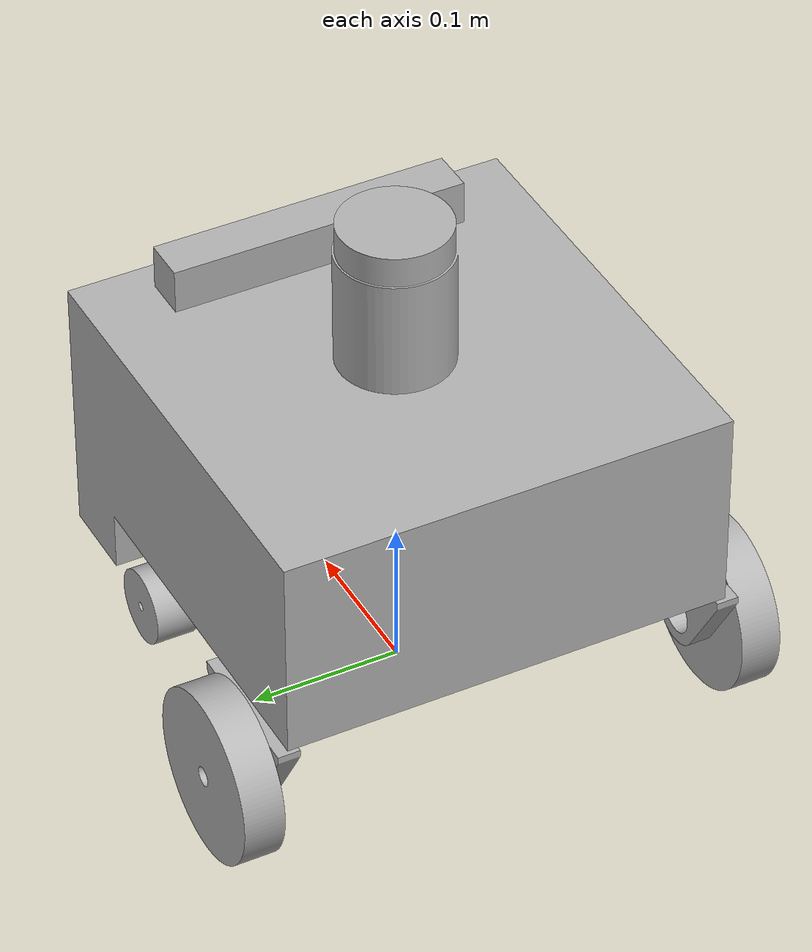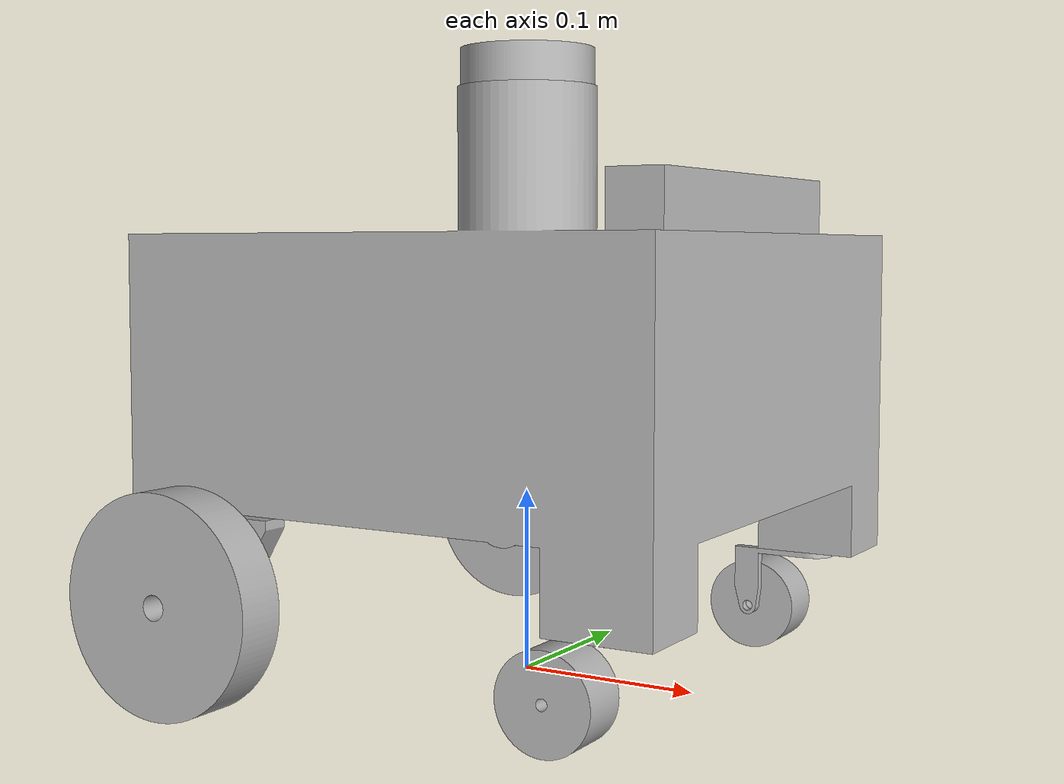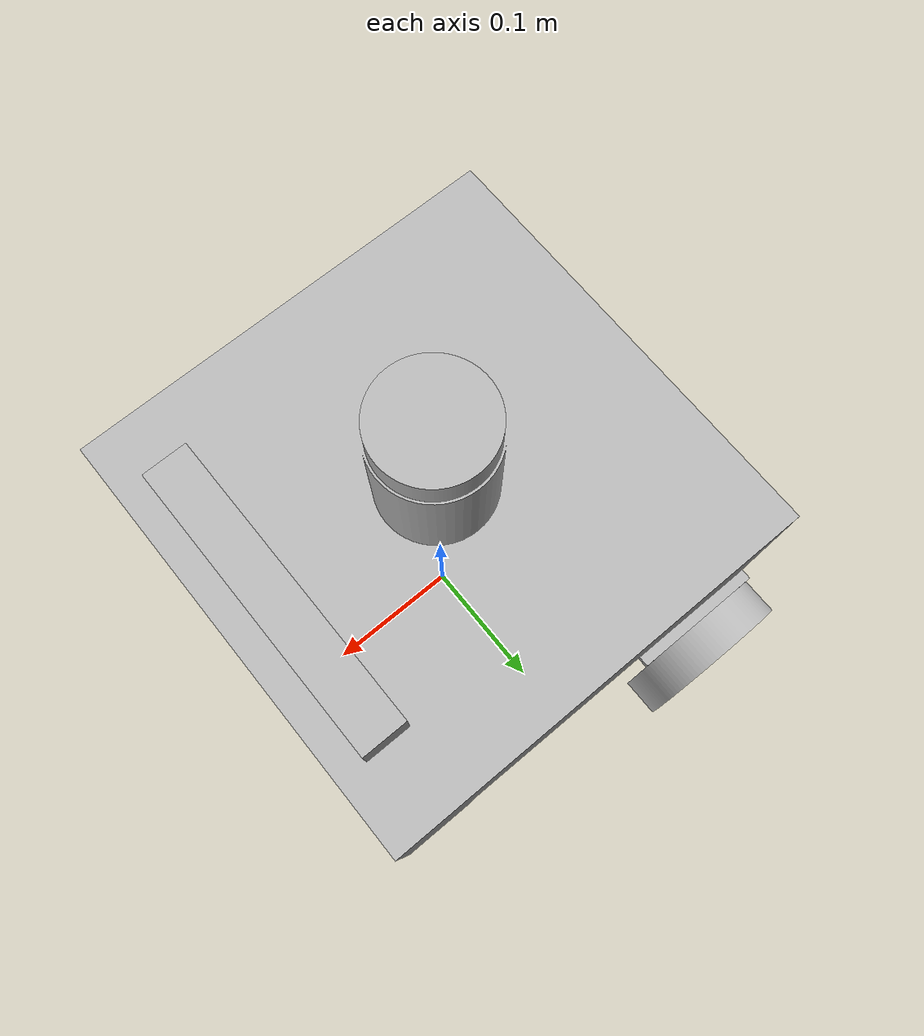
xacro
<?xml version="1.0" ?>
<robot name="agv_origin" xmlns:xacro="http://www.ros.org/wiki/xacro">

<xacro:include filename="$(find agv_origin_description)/urdf/materials.xacro" />
<xacro:include filename="$(find agv_origin_description)/urdf/agv_origin.trans" />
<xacro:include filename="$(find agv_origin_description)/urdf/agv_origin.gazebo" />
<link name="base_footprint"/>

<joint name="base_footprint_joint" type="fixed">
  <parent link="base_footprint"/>
  <child link="base_link"/>
  <origin xyz="0 0 0.1005" rpy="0 0 3.14159"/>
</joint>
<link name="base_link">
  <inertial>
    <origin xyz="-3.244789018330238e-07 -0.0010765720842164906 0.07086414896629663" rpy="0 0 0"/>
    <mass value="104.19831248399346"/>
    <inertia ixx="0.994899" iyy="1.00618" izz="1.564619" ixy="-4e-06" iyz="-0.010142" ixz="-3e-06"/>
  </inertial>
  <visual>
    <origin xyz="0 0 0" rpy="0 0 -1.5708"/>
    <geometry>
      <mesh filename="file://$(find agv_origin_description)/meshes/base_link.stl" scale="0.001 0.001 0.001"/>
    </geometry>
    <material name="silver"/>
  </visual>
  <collision>
    <origin xyz="0 0 0" rpy="0 0 0"/>
    <geometry>
      <mesh filename="file://$(find agv_origin_description)/meshes/base_link.stl" scale="0.001 0.001 0.001"/>
    </geometry>
  </collision>
</link>

<link name="lidar_1">
  <inertial>
    <origin xyz="6.625073916904315e-18 6.625073916904315e-18 0.010250000000000009" rpy="0 0 0"/>
    <mass value="0.6735333728409896"/>
    <inertia ixx="0.000248" iyy="0.000248" izz="0.000449" ixy="0.0" iyz="0.0" ixz="0.0"/>
  </inertial>
  <visual>
    <origin xyz="-0.0 -0.0 -0.22" rpy="0 0 -1.5708"/>
    <geometry>
      <mesh filename="file://$(find agv_origin_description)/meshes/lidar_1.stl" scale="0.001 0.001 0.001"/>
    </geometry>
    <material name="silver"/>
  </visual>
  <collision>
    <origin xyz="-0.0 -0.0 -0.22" rpy="0 0 0"/>
    <geometry>
      <mesh filename="file://$(find agv_origin_description)/meshes/lidar_1.stl" scale="0.001 0.001 0.001"/>
    </geometry>
  </collision>
</link>

<link name="imu_link">
  <visual>
    <geometry>
      <box size="0.04 0.04 0.01"/>
    </geometry>
    <material name="silver"/>
  </visual>
</link>

<link name="depth_cam_1">
  <inertial>
    <origin xyz="0.0 0.0 0.014999999999999986" rpy="0 0 0"/>
    <mass value="1.412999999999999"/>
    <inertia ixx="0.000212" iyy="0.004816" izz="0.004816" ixy="0.0" iyz="0.0" ixz="-0.0"/>
  </inertial>
  <visual>
    <origin xyz="-0.0 0.115 -0.14" rpy="0 0 -1.5708"/>
    <geometry>
      <mesh filename="file://$(find agv_origin_description)/meshes/depth_cam_1.stl" scale="0.001 0.001 0.001"/>
    </geometry>
    <material name="silver"/>
  </visual>
  <collision>
    <origin xyz="-0.0 0.115 -0.14" rpy="0 0 0"/>
    <geometry>
      <mesh filename="file://$(find agv_origin_description)/meshes/depth_cam_1.stl" scale="0.001 0.001 0.001"/>
    </geometry>
  </collision>
</link>

<link name="left_wheel_1">
  <inertial>
    <origin xyz="0.01350000000000004 1.5497114980167481e-09 -6.482005140973079e-10" rpy="0 0 0"/>
    <mass value="2.13458250728232"/>
    <inertia ixx="0.003514" iyy="0.001887" izz="0.001887" ixy="0.0" iyz="-0.0" ixz="-0.0"/>
  </inertial>
  <visual>
    <origin xyz="-0.1578 -0.104 0.0435" rpy="0 0 -1.5708"/>
    <geometry>
      <mesh filename="file://$(find agv_origin_description)/meshes/left_wheel_1.stl" scale="0.001 0.001 0.001"/>
    </geometry>
    <material name="silver"/>
  </visual>
  <collision>
    <origin xyz="-0.1578 -0.104 0.0435" rpy="0 0 0"/>
    <geometry>
      <mesh filename="file://$(find agv_origin_description)/meshes/left_wheel_1.stl" scale="0.001 0.001 0.001"/>
    </geometry>
  </collision>
</link>

<link name="right_wheel_1">
  <inertial>
    <origin xyz="-0.013499999999999984 1.5497114980167481e-09 -6.482005140973079e-10" rpy="0 0 0"/>
    <mass value="2.13458250728232"/>
    <inertia ixx="0.003514" iyy="0.001887" izz="0.001887" ixy="0.0" iyz="-0.0" ixz="0.0"/>
  </inertial>
  <visual>
    <origin xyz="0.1578 -0.104 0.0435" rpy="0 0 -1.5708"/>
    <geometry>
      <mesh filename="file://$(find agv_origin_description)/meshes/right_wheel_1.stl" scale="0.001 0.001 0.001"/>
    </geometry>
    <material name="silver"/>
  </visual>
  <collision>
    <origin xyz="0.1578 -0.104 0.0435" rpy="0 0 0"/>
    <geometry>
      <mesh filename="file://$(find agv_origin_description)/meshes/right_wheel_1.stl" scale="0.001 0.001 0.001"/>
    </geometry>
  </collision>
</link>

<link name="castrol_bracket_right_1">
  <inertial>
    <origin xyz="0.01608195515952232 0.022102290099966046 -0.011027594642399899" rpy="0 0 0"/>
    <mass value="0.03265959573384071"/>
    <inertia ixx="1.4e-05" iyy="6e-06" izz="1.2e-05" ixy="-3e-06" iyz="4e-06" ixz="1e-06"/>
  </inertial>
  <visual>
    <origin xyz="0.12695 0.1222 0.0406" rpy="0 0 -1.5708"/>
    <geometry>
      <mesh filename="file://$(find agv_origin_description)/meshes/castrol_bracket_right_1.stl" scale="0.001 0.001 0.001"/>
    </geometry>
    <material name="silver"/>
  </visual>
  <collision>
    <origin xyz="0.12695 0.1222 0.0406" rpy="0 0 0"/>
    <geometry>
      <mesh filename="file://$(find agv_origin_description)/meshes/castrol_bracket_right_1.stl" scale="0.001 0.001 0.001"/>
    </geometry>
  </collision>
</link>

<link name="castrol_wheel_right_1">
  <inertial>
    <origin xyz="-0.013999958585943356 -1.3113066604786283e-09 -1.1175870923141318e-09" rpy="0 0 0"/>
    <mass value="0.43733266648974745"/>
    <inertia ixx="0.000142" iyy="0.0001" izz="0.0001" ixy="0.0" iyz="0.0" ixz="-0.0"/>
  </inertial>
  <visual>
    <origin xyz="0.109238 0.088 0.075" rpy="0 0 -1.5708"/>
    <geometry>
      <mesh filename="file://$(find agv_origin_description)/meshes/castrol_wheel_right_1.stl" scale="0.001 0.001 0.001"/>
    </geometry>
    <material name="silver"/>
  </visual>
  <collision>
    <origin xyz="0.109238 0.088 0.075" rpy="0 0 0"/>
    <geometry>
      <mesh filename="file://$(find agv_origin_description)/meshes/castrol_wheel_right_1.stl" scale="0.001 0.001 0.001"/>
    </geometry>
  </collision>
</link>

<link name="castrol_bracket_left_1">
  <inertial>
    <origin xyz="-0.016081955159522376 0.022102290099966018 -0.011027594642399823" rpy="0 0 0"/>
    <mass value="0.032659595733840543"/>
    <inertia ixx="1.4e-05" iyy="6e-06" izz="1.2e-05" ixy="3e-06" iyz="4e-06" ixz="-1e-06"/>
  </inertial>
  <visual>
    <origin xyz="-0.12695 0.1222 0.0406" rpy="0 0 -1.5708"/>
    <geometry>
      <mesh filename="file://$(find agv_origin_description)/meshes/castrol_bracket_left_1.stl" scale="0.001 0.001 0.001"/>
    </geometry>
    <material name="silver"/>
  </visual>
  <collision>
    <origin xyz="-0.12695 0.1222 0.0406" rpy="0 0 0"/>
    <geometry>
      <mesh filename="file://$(find agv_origin_description)/meshes/castrol_bracket_left_1.stl" scale="0.001 0.001 0.001"/>
    </geometry>
  </collision>
</link>

<link name="castrol_wheel_left_1">
  <inertial>
    <origin xyz="0.013999958585943356 -1.3113066604786283e-09 -1.1175870923141318e-09" rpy="0 0 0"/>
    <mass value="0.43733266648974745"/>
    <inertia ixx="0.000142" iyy="0.0001" izz="0.0001" ixy="0.0" iyz="0.0" ixz="0.0"/>
  </inertial>
  <visual>
    <origin xyz="-0.109238 0.088 0.075" rpy="0 0 -1.5708"/>
    <geometry>
      <mesh filename="file://$(find agv_origin_description)/meshes/castrol_wheel_left_1.stl" scale="0.001 0.001 0.001"/>
    </geometry>
    <material name="silver"/>
  </visual>
  <collision>
    <origin xyz="-0.109238 0.088 0.075" rpy="0 0 0"/>
    <geometry>
      <mesh filename="file://$(find agv_origin_description)/meshes/castrol_wheel_left_1.stl" scale="0.001 0.001 0.001"/>
    </geometry>
  </collision>
</link>

<joint name="Rigid 1" type="fixed">
  <origin xyz="0.0 0.0 0.22" rpy="0 0 0"/>
  <parent link="base_link"/>
  <child link="lidar_1"/>
</joint>

<joint name="Rigid 2" type="fixed">
  <origin xyz="0.0 -0.115 0.14" rpy="0 0 0"/>
  <parent link="base_link"/>
  <child link="depth_cam_1"/>
</joint>

<joint name="Revolute 3" type="continuous">
  <origin xyz="0.1578 0.104 -0.0435" rpy="0 0 0"/>
  <parent link="base_link"/>
  <child link="left_wheel_1"/>
  <axis xyz="-1.0 0.0 0.0"/>
</joint>

<joint name="Revolute 4" type="continuous">
  <origin xyz="-0.1578 0.104 -0.0435" rpy="0 0 0"/>
  <parent link="base_link"/>
  <child link="right_wheel_1"/>
  <axis xyz="-1.0 0.0 0.0"/>
</joint>

<joint name="Revolute 5" type="continuous">
  <origin xyz="-0.12695 -0.1222 -0.0406" rpy="0 0 0"/>
  <parent link="base_link"/>
  <child link="castrol_bracket_right_1"/>
  <axis xyz="0.0 0.0 -1.0"/>
</joint>

<joint name="Revolute 6" type="continuous">
  <origin xyz="0.017712 0.0342 -0.0344" rpy="0 0 0"/>
  <parent link="castrol_bracket_right_1"/>
  <child link="castrol_wheel_right_1"/>
  <axis xyz="-1.0 0.0 0.0"/>
</joint>

<joint name="Revolute 7" type="continuous">
  <origin xyz="0.12695 -0.1222 -0.0406" rpy="0 0 0"/>
  <parent link="base_link"/>
  <child link="castrol_bracket_left_1"/>
  <axis xyz="0.0 0.0 -1.0"/>
</joint>

<joint name="Revolute 8" type="continuous">
  <origin xyz="-0.017712 0.0342 -0.0344" rpy="0 0 0"/>
  <parent link="castrol_bracket_left_1"/>
  <child link="castrol_wheel_left_1"/>
  <axis xyz="-1.0 0.0 0.0"/>
</joint>

<joint name="imu_joint" type="fixed">
  <origin xyz="0.0 0.0 0.1" rpy="0 0 0"/>
  <parent link="base_link"/>
  <child link="imu_link"/>
</joint>

</robot>

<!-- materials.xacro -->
<robot name="agv_origin" xmlns:xacro="http://www.ros.org/wiki/xacro" >

<material name="silver">
  <color rgba="0.700 0.700 0.700 1.000"/>
</material>

</robot>

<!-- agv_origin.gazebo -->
<robot name="agv_origin" xmlns:xacro="http://www.ros.org/wiki/xacro" >

<xacro:property name="body_color" value="Gazebo/Silver" />
<gazebo>
  <plugin name="control" filename="libgazebo_ros_control.so"/>
</gazebo>
<gazebo reference="base_link">
  <material>${body_color}</material>
  <mu1>0.2</mu1>
  <mu2>0.2</mu2>
  <self_collide>true</self_collide>
  <gravity>true</gravity>
</gazebo>

<gazebo reference="lidar_1">
  <material>${body_color}</material>
  <mu1>0.2</mu1>
  <mu2>0.2</mu2>
  <self_collide>true</self_collide>
</gazebo>

<gazebo reference="depth_cam_1">
  <material>${body_color}</material>
  <mu1>0.2</mu1>
  <mu2>0.2</mu2>
  <self_collide>true</self_collide>
</gazebo>

<gazebo reference="left_wheel_1">
  <material>${body_color}</material>
  <mu1>0.2</mu1>
  <mu2>0.2</mu2>
  <self_collide>true</self_collide>
</gazebo>

<gazebo reference="right_wheel_1">
  <material>${body_color}</material>
  <mu1>0.2</mu1>
  <mu2>0.2</mu2>
  <self_collide>true</self_collide>
</gazebo>

<gazebo reference="castrol_bracket_right_1">
  <material>${body_color}</material>
  <mu1>0.2</mu1>
  <mu2>0.2</mu2>
  <self_collide>true</self_collide>
</gazebo>

<gazebo reference="castrol_wheel_right_1">
  <material>${body_color}</material>
  <mu1>0.2</mu1>
  <mu2>0.2</mu2>
  <self_collide>true</self_collide>
</gazebo>

<gazebo reference="castrol_bracket_left_1">
  <material>${body_color}</material>
  <mu1>0.2</mu1>
  <mu2>0.2</mu2>
  <self_collide>true</self_collide>
</gazebo>

<gazebo reference="castrol_wheel_left_1">
  <material>${body_color}</material>
  <mu1>0.2</mu1>
  <mu2>0.2</mu2>
  <self_collide>true</self_collide>
</gazebo>

</robot>
